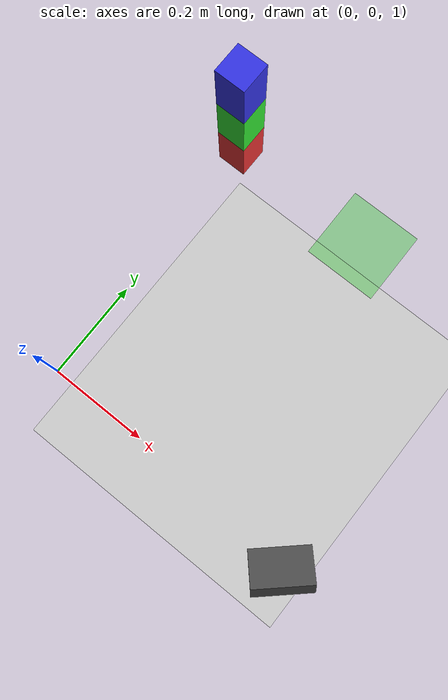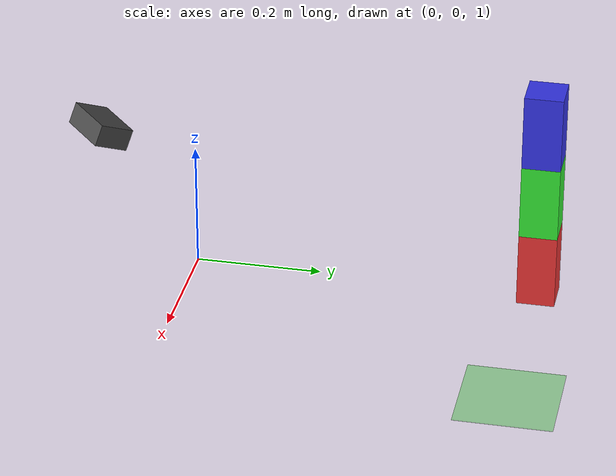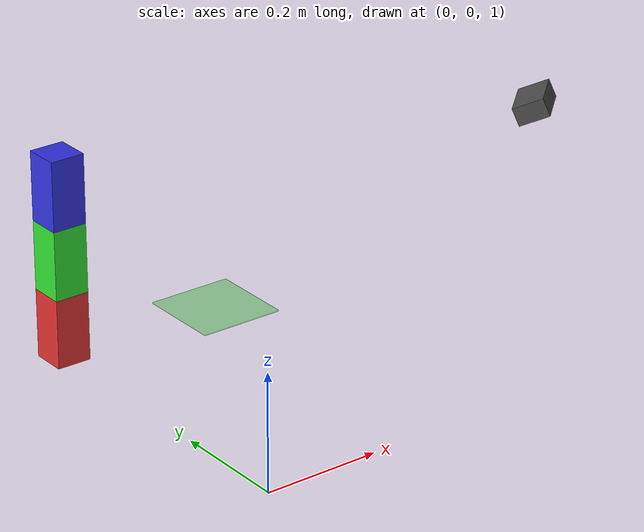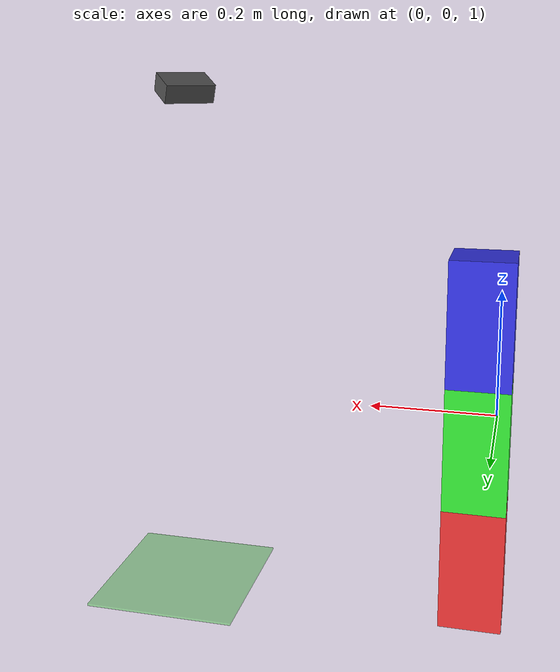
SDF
<sdf version="1.6">
 <world name="box_stack">
  <plugin filename="gz-sim-sensors-system" name="gz::sim::systems::Sensors">
   <render_engine>ogre2</render_engine>
   <background_color>0.8 0.8 0.8</background_color>
  </plugin>
  <scene><shadows>0</shadows></scene>
  <include><uri>model://sun</uri></include>
  <model name="ground_plane"><static>true</static><include><uri>model://ground_plane</uri></include></model>
  <model name="box_bottom">
   <pose>0.0 0.55 1.06 0 0 0</pose>
   <link name="link">
    <inertial>
     <mass>0.5</mass>
     <inertia><ixx>0.00065</ixx><iyy>0.00065</iyy><izz>0.00030</izz><ixy>0</ixy><ixz>0</ixz><iyz>0</iyz></inertia>
    </inertial>
    <collision name="collision">
     <geometry><box><size>0.06 0.06 0.12</size></box></geometry>
     <surface>
      <friction><ode><mu>5.0</mu><mu2>5.0</mu2></ode></friction>
      <contact><ode><kp>1e6</kp><kd>100</kd></ode></contact>
     </surface>
    </collision>
    <visual name="visual">
     <geometry><box><size>0.06 0.06 0.12</size></box></geometry>
     <material><ambient>0.9 0.2 0.2 1</ambient><diffuse>0.9 0.2 0.2 1</diffuse></material>
    </visual>
   </link>
  </model>
  <model name="box_middle">
   <pose>0.0 0.55 1.18 0 0 0</pose>
   <link name="link">
    <inertial>
     <mass>0.4</mass>
     <inertia><ixx>0.00052</ixx><iyy>0.00052</iyy><izz>0.00024</izz><ixy>0</ixy><ixz>0</ixz><iyz>0</iyz></inertia>
    </inertial>
    <collision name="collision">
     <geometry><box><size>0.06 0.06 0.12</size></box></geometry>
     <surface>
      <friction><ode><mu>5.0</mu><mu2>5.0</mu2></ode></friction>
      <contact><ode><kp>1e6</kp><kd>100</kd></ode></contact>
     </surface>
    </collision>
    <visual name="visual">
     <geometry><box><size>0.06 0.06 0.12</size></box></geometry>
     <material><ambient>0.2 0.9 0.2 1</ambient><diffuse>0.2 0.9 0.2 1</diffuse></material>
    </visual>
   </link>
  </model>
  <model name="box_top">
   <pose>0.0 0.55 1.30 0 0 0</pose>
   <link name="link">
    <inertial>
     <mass>0.3</mass>
     <inertia><ixx>0.00039</ixx><iyy>0.00039</iyy><izz>0.00018</izz><ixy>0</ixy><ixz>0</ixz><iyz>0</iyz></inertia>
    </inertial>
    <collision name="collision">
     <geometry><box><size>0.06 0.06 0.12</size></box></geometry>
     <surface>
      <friction><ode><mu>5.0</mu><mu2>5.0</mu2></ode></friction>
      <contact><ode><kp>1e6</kp><kd>100</kd></ode></contact>
     </surface>
    </collision>
    <visual name="visual">
     <geometry><box><size>0.06 0.06 0.12</size></box></geometry>
     <material><ambient>0.2 0.2 0.9 1</ambient><diffuse>0.2 0.2 0.9 1</diffuse></material>
    </visual>
   </link>
  </model>
  <model name="safe_zone">
   <static>true</static>
   <pose>0.3 0.55 1.001 0 0 0</pose>
   <link name="link">
    <visual name="visual">
     <geometry><box><size>0.15 0.15 0.002</size></box></geometry>
     <material><ambient>0.3 0.8 0.3 0.5</ambient><diffuse>0.3 0.8 0.3 0.5</diffuse></material>
    </visual>
   </link>
  </model>
  <model name="rgbd_camera">
   <static>true</static>
   <pose>0.5 0.0 1.5 0 0.41 2.31</pose>
   <link name="camera_link">
    <visual name="visual">
     <geometry><box><size>0.05 0.08 0.03</size></box></geometry>
     <material><ambient>0.3 0.3 0.3 1</ambient><diffuse>0.3 0.3 0.3 1</diffuse></material>
    </visual>
    <sensor name="rgbd_sensor" type="rgbd_camera">
     <update_rate>5</update_rate>
     <topic>rgbd_camera</topic>
     <camera>
      <horizontal_fov>1.047</horizontal_fov>
      <image><width>640</width><height>480</height><format>R8G8B8</format></image>
      <clip><near>0.1</near><far>5.0</far></clip>
      <depth_camera><clip><near>0.1</near><far>5.0</far></clip></depth_camera>
     </camera>
     <always_on>1</always_on>
     <visualize>true</visualize>
    </sensor>
   </link>
  </model>
 </world>
</sdf>
